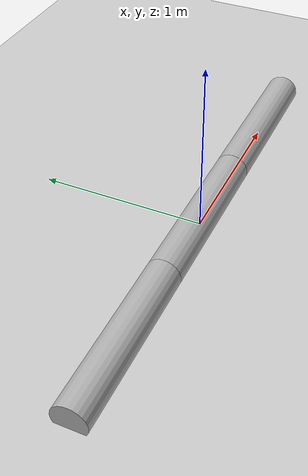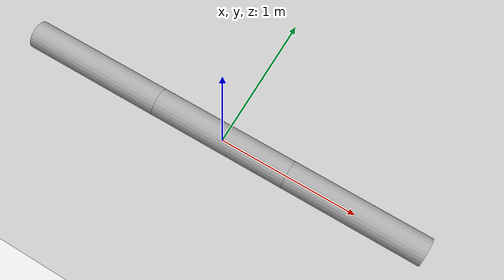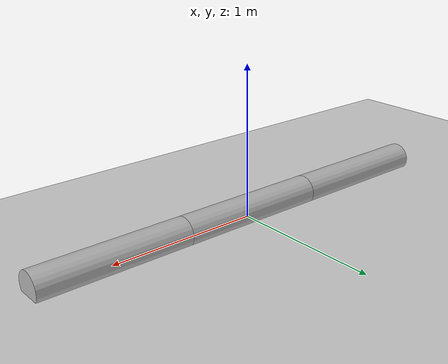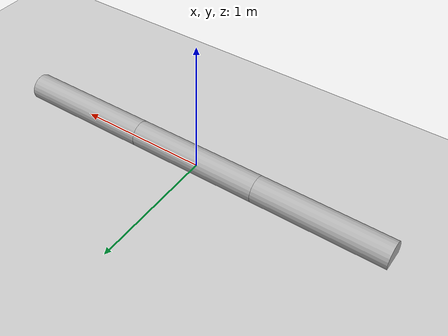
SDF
<?xml version="1.0" ?>
<sdf version="1.8">
  <world name="swimmer">
    <physics name="10ms" type="ignored">
      <max_step_size>0.01</max_step_size>
      <real_time_update_rate>0</real_time_update_rate>
    </physics>
    <plugin filename="gz-sim-physics-system"           name="gz::sim::systems::Physics"/>
    <plugin filename="gz-sim-contact-system"           name="gz::sim::systems::Contact"/>
    <plugin filename="gz-sim-sensors-system"           name="gz::sim::systems::Sensors">
      <render_engine>ogre2</render_engine>
    </plugin>
    <plugin filename="gz-sim-scene-broadcaster-system" name="gz::sim::systems::SceneBroadcaster"/>
    <plugin filename="gz-sim-user-commands-system"     name="gz::sim::systems::UserCommands"/>

    <plugin
      filename="gz-sim-python-system-loader-system"
      name="gz::sim::systems::PythonSystemLoader">
      <module_name>swimmer_learner</module_name>
      <agent_name>swimmer</agent_name>
      <frame_skip>5</frame_skip>
    </plugin>

    <light name="sun" type="directional">
      <cast_shadows>true</cast_shadows>
      <pose>0 0 10 0 0 0</pose>
      <diffuse>0.8 0.8 0.8 1</diffuse>
      <specular>0.2 0.2 0.2 1</specular>
      <direction>-0.5 0.1 -0.9</direction>
    </light>

    <model name="ground_plane">
      <static>true</static>
      <link name="link">
        <collision name="collision">
          <geometry><plane><normal>0 0 1</normal><size>100 100</size></plane></geometry>
        </collision>
        <visual name="visual">
          <geometry><plane><normal>0 0 1</normal><size>100 100</size></plane></geometry>
          <material>
            <ambient>0.8 0.8 0.8 1</ambient>
            <diffuse>0.8 0.8 0.8 1</diffuse>
            <specular>0.8 0.8 0.8 1</specular>
          </material>
        </visual>
      </link>
    </model>

    <model name="swimmer">
      <pose>0 0 0.05 0 0 0</pose>
      <include merge="true">
        <uri>package://gazebo_gymnasium_resources/models/swimmer</uri>
      </include>
    </model>
  </world>
</sdf>

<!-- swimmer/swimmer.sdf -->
<sdf version='1.11'>
  <model name='swimmer'>
    <link name='link1_1'>
      <inertial>
        <pose>0 0 0 0 0 0</pose>
        <mass>1.9999999999999999e-06</mass>
        <inertia>
          <ixx>2.0000000000000001e-09</ixx>
          <ixy>0</ixy>
          <ixz>0</ixz>
          <iyy>2.0000000000000001e-09</iyy>
          <iyz>0</iyz>
          <izz>2.0000000000000001e-09</izz>
        </inertia>
      </inertial>
    </link>
    <joint name='slider1' type='prismatic'>
      <pose relative_to='link1_1'>0 0 0 0 0 0</pose>
      <parent>link1_1</parent>
      <child>link1_2</child>
      <axis>
        <xyz>1 0 0</xyz>
        <limit>
          <lower>0</lower>
          <upper>1</upper>
          <effort>0</effort>
          <velocity>0</velocity>
        </limit>
        <dynamics>
          <damping>1</damping>
          <friction>0.0001</friction>
          <spring_reference>0</spring_reference>
          <spring_stiffness>0</spring_stiffness>
        </dynamics>
      </axis>
    </joint>
    <link name='link1_2'>
      <pose relative_to='slider1'>0 0 0 0 0 0</pose>
      <inertial>
        <pose>0 0 0 0 0 0</pose>
        <mass>9.9999999999999995e-07</mass>
        <inertia>
          <ixx>1.0000000000000001e-09</ixx>
          <ixy>0</ixy>
          <ixz>0</ixz>
          <iyy>1.0000000000000001e-09</iyy>
          <iyz>0</iyz>
          <izz>1.0000000000000001e-09</izz>
        </inertia>
      </inertial>
    </link>
    <joint name='slider2' type='prismatic'>
      <pose relative_to='link1_2'>0 0 0 0 0 0</pose>
      <parent>link1_2</parent>
      <child>link1_3</child>
      <axis>
        <xyz>0 1 0</xyz>
        <limit>
          <lower>0</lower>
          <upper>1</upper>
          <effort>0</effort>
          <velocity>0</velocity>
        </limit>
        <dynamics>
          <damping>1</damping>
          <friction>0.0001</friction>
          <spring_reference>0</spring_reference>
          <spring_stiffness>0</spring_stiffness>
        </dynamics>
      </axis>
    </joint>
    <link name='link1_3'>
      <pose relative_to='slider2'>0 0 0 0 0 0</pose>
      <inertial>
        <pose>0 0 0 0 0 0</pose>
        <mass>9.9999999999999995e-07</mass>
        <inertia>
          <ixx>1.0000000000000001e-09</ixx>
          <ixy>0</ixy>
          <ixz>0</ixz>
          <iyy>1.0000000000000001e-09</iyy>
          <iyz>0</iyz>
          <izz>1.0000000000000001e-09</izz>
        </inertia>
      </inertial>
    </link>
    <joint name='free_body_rot' type='revolute'>
      <pose relative_to='link1_3'>0 0 0 0 0 0</pose>
      <parent>link1_3</parent>
      <child>link1_4</child>
      <axis>
        <xyz>0 0 1</xyz>
        <limit>
          <lower>-inf</lower>
          <upper>inf</upper>
        </limit>
        <dynamics>
          <damping>1</damping>
          <friction>0.0001</friction>
          <spring_reference>0</spring_reference>
          <spring_stiffness>0</spring_stiffness>
        </dynamics>
      </axis>
    </joint>
    <link name='link1_4'>
      <pose relative_to='free_body_rot'>0 0 0 0 0 0</pose>
      <inertial>
        <pose>0.99999997191383694 0 0 0 0 0</pose>
        <mass>35.604720999999998</mass>
        <inertia>
          <ixx>0.23736000099999999</ixx>
          <ixy>0</ixy>
          <ixz>0</ixz>
          <iyy>4.3912510009999721</iyy>
          <iyz>0</iyz>
          <izz>4.3912510009999721</izz>
        </inertia>
      </inertial>
      <collision name='link1_4_fixed_joint_lump__torso_collision'>
        <pose>1 0 0 0 -1.5707963267948966 0</pose>
        <geometry>
          <cylinder>
            <length>1</length>
            <radius>0.10000000000000001</radius>
          </cylinder>
        </geometry>
      </collision>
      <visual name='link1_4_fixed_joint_lump__torso_visual'>
        <pose>1 0 0 0 -1.5707963267948966 0</pose>
        <geometry>
          <cylinder>
            <length>1</length>
            <radius>0.10000000000000001</radius>
          </cylinder>
        </geometry>
              <material>
          <ambient>0.5 0.5 0.5 1</ambient>
          <diffuse>0.7 0.7 0.7 1</diffuse>
          <specular>0.1 0.1 0.1 1</specular>
        </material>
      </visual>
    </link>
    <joint name='motor1_rot' type='revolute'>
      <pose relative_to='link1_4'>0.5 0 0 0 0 0</pose>
      <parent>link1_4</parent>
      <child>link1_6</child>
      <axis>
        <xyz>0 0 1</xyz>
        <limit>
          <lower>-1.74533</lower>
          <upper>1.74533</upper>
          <effort>0</effort>
          <velocity>0</velocity>
        </limit>
        <dynamics>
          <damping>1</damping>
          <friction>0.0001</friction>
          <spring_reference>0</spring_reference>
          <spring_stiffness>0</spring_stiffness>
        </dynamics>
      </axis>
    </joint>
    <link name='link1_6'>
      <pose relative_to='motor1_rot'>0 0 0 0 0 0</pose>
      <inertial>
        <pose>-0.49999998595691852 0 0 0 0 0</pose>
        <mass>35.604720999999998</mass>
        <inertia>
          <ixx>0.23736000099999999</ixx>
          <ixy>0</ixy>
          <ixz>0</ixz>
          <iyy>4.3912502509999944</iyy>
          <iyz>0</iyz>
          <izz>4.3912502509999944</izz>
        </inertia>
      </inertial>
      <collision name='link1_6_fixed_joint_lump__mid_collision'>
        <pose>-0.5 0 0 0 -1.5707963267948966 0</pose>
        <geometry>
          <cylinder>
            <length>1</length>
            <radius>0.10000000000000001</radius>
          </cylinder>
        </geometry>
      </collision>
      <visual name='link1_6_fixed_joint_lump__mid_visual'>
        <pose>-0.5 0 0 0 -1.5707963267948966 0</pose>
        <geometry>
          <cylinder>
            <length>1</length>
            <radius>0.10000000000000001</radius>
          </cylinder>
        </geometry>
              <material>
          <ambient>0.5 0.5 0.5 1</ambient>
          <diffuse>0.7 0.7 0.7 1</diffuse>
          <specular>0.1 0.1 0.1 1</specular>
        </material>
      </visual>
    </link>
    <joint name='motor2_rot' type='revolute'>
      <pose relative_to='link1_6'>-1 0 0 0 0 0</pose>
      <parent>link1_6</parent>
      <child>link1_8</child>
      <axis>
        <xyz>0 0 1</xyz>
        <limit>
          <lower>-1.74533</lower>
          <upper>1.74533</upper>
          <effort>0</effort>
          <velocity>0</velocity>
        </limit>
        <dynamics>
          <damping>1</damping>
          <friction>0.0001</friction>
          <spring_reference>0</spring_reference>
          <spring_stiffness>0</spring_stiffness>
        </dynamics>
      </axis>
    </joint>
    <link name='link1_8'>
      <pose relative_to='motor2_rot'>0 0 0 0 0 0</pose>
      <inertial>
        <pose>-0.49999998595691852 0 0 0 0 0</pose>
        <mass>35.604720999999998</mass>
        <inertia>
          <ixx>0.23736000099999999</ixx>
          <ixy>0</ixy>
          <ixz>0</ixz>
          <iyy>4.3912502509999944</iyy>
          <iyz>0</iyz>
          <izz>4.3912502509999944</izz>
        </inertia>
      </inertial>
      <collision name='link1_8_fixed_joint_lump__back_collision'>
        <pose>-0.5 0 0 0 -1.5707963267948966 0</pose>
        <geometry>
          <cylinder>
            <length>1</length>
            <radius>0.10000000000000001</radius>
          </cylinder>
        </geometry>
      </collision>
      <visual name='link1_8_fixed_joint_lump__back_visual'>
        <pose>-0.5 0 0 0 -1.5707963267948966 0</pose>
        <geometry>
          <cylinder>
            <length>1</length>
            <radius>0.10000000000000001</radius>
          </cylinder>
        </geometry>
              <material>
          <ambient>0.5 0.5 0.5 1</ambient>
          <diffuse>0.7 0.7 0.7 1</diffuse>
          <specular>0.1 0.1 0.1 1</specular>
        </material>
      </visual>
    </link>

</model>
</sdf>
